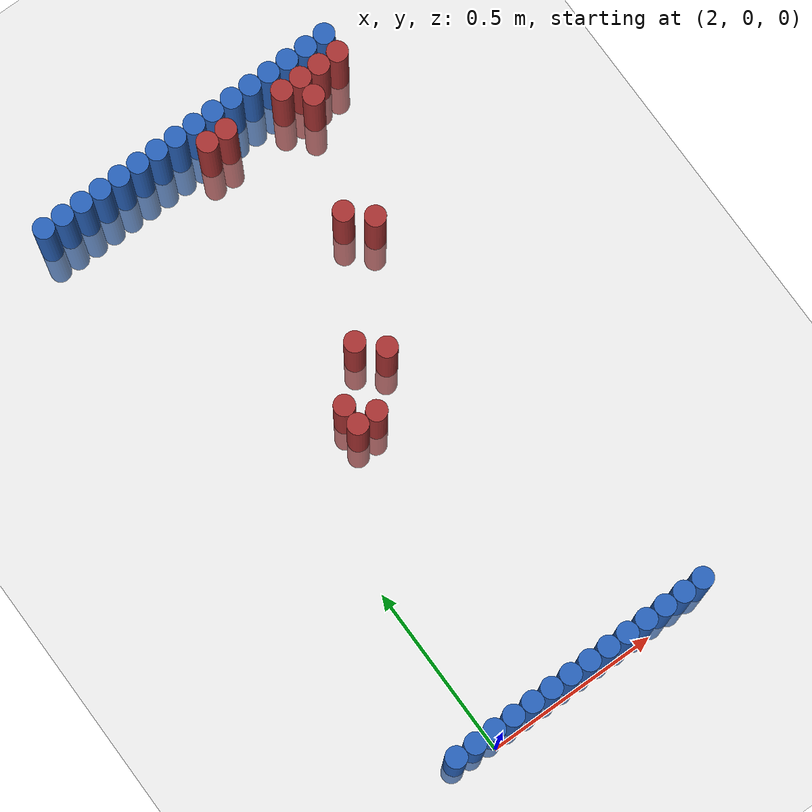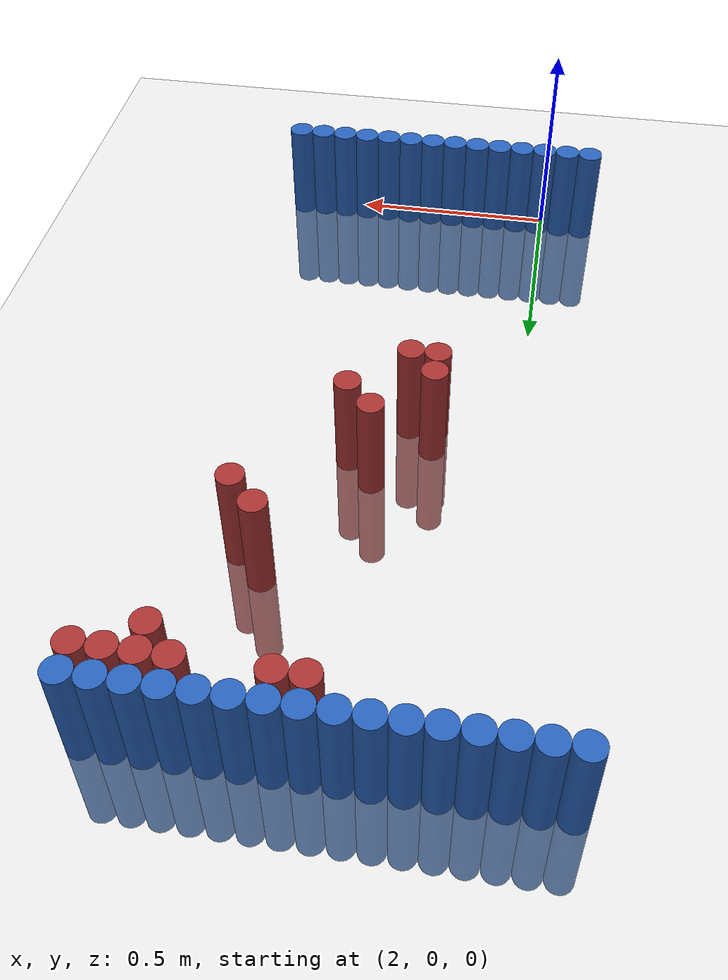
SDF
<sdf version="1.6">
 <world name="default">
  <model name="ground_plane">
   <static>1</static>
   <link name="link">
    <collision name="collision">
     <geometry><plane><normal>0 0 1</normal><size>100 100</size></plane></geometry>
     <surface><friction><ode><mu>100</mu><mu2>50</mu2></ode></friction></surface>
    </collision>
    <visual name="visual">
     <cast_shadows>0</cast_shadows>
     <geometry><plane><normal>0 0 1</normal><size>100 100</size></plane></geometry>
     <material>
      <script><uri>file://media/materials/scripts/gazebo.material</uri><name>Gazebo/Grey</name></script>
     </material>
    </visual>
   </link>
  </model>
  <model name="unit_cylinder_88">
   <static>1</static>
   <pose>1.830000 1.770000 0.000000 0.000000 0.000000 0.000000</pose>
   <link name="link">
    <inertial>
     <mass>1</mass>
     <inertia><ixx>0.145833</ixx><ixy>0</ixy><ixz>0</ixz><iyy>0.145833</iyy><iyz>0</iyz><izz>0.125</izz></inertia>
    </inertial>
    <collision name="collision">
     <geometry><cylinder><radius>0.030000</radius><length>0.5</length></cylinder></geometry>
    </collision>
    <visual name="visual">
     <geometry><cylinder><radius>0.030000</radius><length>0.5</length></cylinder></geometry>
     <material>
      <ambient>0.152000 0.379000 0.720000 1</ambient>
      <diffuse>0.152000 0.379000 0.720000 1</diffuse>
     </material>
     <material>
      <script><name>Gazebo/Grey</name><uri>file://media/materials/scripts/gazebo.material</uri></script>
     </material>
    </visual>
   </link>
  </model>
  <model name="unit_cylinder_89">
   <static>1</static>
   <pose>1.890000 0.030000 0.000000 0.000000 0.000000 0.000000</pose>
   <link name="link">
    <inertial>
     <mass>1</mass>
     <inertia><ixx>0.145833</ixx><ixy>0</ixy><ixz>0</ixz><iyy>0.145833</iyy><iyz>0</iyz><izz>0.125</izz></inertia>
    </inertial>
    <collision name="collision">
     <geometry><cylinder><radius>0.030000</radius><length>0.5</length></cylinder></geometry>
    </collision>
    <visual name="visual">
     <geometry><cylinder><radius>0.030000</radius><length>0.5</length></cylinder></geometry>
     <material>
      <ambient>0.152000 0.379000 0.720000 1</ambient>
      <diffuse>0.152000 0.379000 0.720000 1</diffuse>
     </material>
     <material>
      <script><name>Gazebo/Grey</name><uri>file://media/materials/scripts/gazebo.material</uri></script>
     </material>
    </visual>
   </link>
  </model>
  <model name="unit_cylinder_90">
   <static>1</static>
   <pose>1.890000 1.770000 0.000000 0.000000 0.000000 0.000000</pose>
   <link name="link">
    <inertial>
     <mass>1</mass>
     <inertia><ixx>0.145833</ixx><ixy>0</ixy><ixz>0</ixz><iyy>0.145833</iyy><iyz>0</iyz><izz>0.125</izz></inertia>
    </inertial>
    <collision name="collision">
     <geometry><cylinder><radius>0.030000</radius><length>0.5</length></cylinder></geometry>
    </collision>
    <visual name="visual">
     <geometry><cylinder><radius>0.030000</radius><length>0.5</length></cylinder></geometry>
     <material>
      <ambient>0.152000 0.379000 0.720000 1</ambient>
      <diffuse>0.152000 0.379000 0.720000 1</diffuse>
     </material>
     <material>
      <script><name>Gazebo/Grey</name><uri>file://media/materials/scripts/gazebo.material</uri></script>
     </material>
    </visual>
   </link>
  </model>
  <model name="unit_cylinder_91">
   <static>1</static>
   <pose>1.950000 0.030000 0.000000 0.000000 0.000000 0.000000</pose>
   <link name="link">
    <inertial>
     <mass>1</mass>
     <inertia><ixx>0.145833</ixx><ixy>0</ixy><ixz>0</ixz><iyy>0.145833</iyy><iyz>0</iyz><izz>0.125</izz></inertia>
    </inertial>
    <collision name="collision">
     <geometry><cylinder><radius>0.030000</radius><length>0.5</length></cylinder></geometry>
    </collision>
    <visual name="visual">
     <geometry><cylinder><radius>0.030000</radius><length>0.5</length></cylinder></geometry>
     <material>
      <ambient>0.152000 0.379000 0.720000 1</ambient>
      <diffuse>0.152000 0.379000 0.720000 1</diffuse>
     </material>
     <material>
      <script><name>Gazebo/Grey</name><uri>file://media/materials/scripts/gazebo.material</uri></script>
     </material>
    </visual>
   </link>
  </model>
  <model name="unit_cylinder_92">
   <static>1</static>
   <pose>1.950000 1.770000 0.000000 0.000000 0.000000 0.000000</pose>
   <link name="link">
    <inertial>
     <mass>1</mass>
     <inertia><ixx>0.145833</ixx><ixy>0</ixy><ixz>0</ixz><iyy>0.145833</iyy><iyz>0</iyz><izz>0.125</izz></inertia>
    </inertial>
    <collision name="collision">
     <geometry><cylinder><radius>0.030000</radius><length>0.5</length></cylinder></geometry>
    </collision>
    <visual name="visual">
     <geometry><cylinder><radius>0.030000</radius><length>0.5</length></cylinder></geometry>
     <material>
      <ambient>0.152000 0.379000 0.720000 1</ambient>
      <diffuse>0.152000 0.379000 0.720000 1</diffuse>
     </material>
     <material>
      <script><name>Gazebo/Grey</name><uri>file://media/materials/scripts/gazebo.material</uri></script>
     </material>
    </visual>
   </link>
  </model>
  <model name="unit_cylinder_93">
   <static>1</static>
   <pose>2.010000 0.030000 0.000000 0.000000 0.000000 0.000000</pose>
   <link name="link">
    <inertial>
     <mass>1</mass>
     <inertia><ixx>0.145833</ixx><ixy>0</ixy><ixz>0</ixz><iyy>0.145833</iyy><iyz>0</iyz><izz>0.125</izz></inertia>
    </inertial>
    <collision name="collision">
     <geometry><cylinder><radius>0.030000</radius><length>0.5</length></cylinder></geometry>
    </collision>
    <visual name="visual">
     <geometry><cylinder><radius>0.030000</radius><length>0.5</length></cylinder></geometry>
     <material>
      <ambient>0.152000 0.379000 0.720000 1</ambient>
      <diffuse>0.152000 0.379000 0.720000 1</diffuse>
     </material>
     <material>
      <script><name>Gazebo/Grey</name><uri>file://media/materials/scripts/gazebo.material</uri></script>
     </material>
    </visual>
   </link>
  </model>
  <model name="unit_cylinder_94">
   <static>1</static>
   <pose>2.010000 1.770000 0.000000 0.000000 0.000000 0.000000</pose>
   <link name="link">
    <inertial>
     <mass>1</mass>
     <inertia><ixx>0.145833</ixx><ixy>0</ixy><ixz>0</ixz><iyy>0.145833</iyy><iyz>0</iyz><izz>0.125</izz></inertia>
    </inertial>
    <collision name="collision">
     <geometry><cylinder><radius>0.030000</radius><length>0.5</length></cylinder></geometry>
    </collision>
    <visual name="visual">
     <geometry><cylinder><radius>0.030000</radius><length>0.5</length></cylinder></geometry>
     <material>
      <ambient>0.152000 0.379000 0.720000 1</ambient>
      <diffuse>0.152000 0.379000 0.720000 1</diffuse>
     </material>
     <material>
      <script><name>Gazebo/Grey</name><uri>file://media/materials/scripts/gazebo.material</uri></script>
     </material>
    </visual>
   </link>
  </model>
  <model name="unit_cylinder_95">
   <static>1</static>
   <pose>2.070000 1.770000 0.000000 0.000000 0.000000 0.000000</pose>
   <link name="link">
    <inertial>
     <mass>1</mass>
     <inertia><ixx>0.145833</ixx><ixy>0</ixy><ixz>0</ixz><iyy>0.145833</iyy><iyz>0</iyz><izz>0.125</izz></inertia>
    </inertial>
    <collision name="collision">
     <geometry><cylinder><radius>0.030000</radius><length>0.5</length></cylinder></geometry>
    </collision>
    <visual name="visual">
     <geometry><cylinder><radius>0.030000</radius><length>0.5</length></cylinder></geometry>
     <material>
      <ambient>0.152000 0.379000 0.720000 1</ambient>
      <diffuse>0.152000 0.379000 0.720000 1</diffuse>
     </material>
     <material>
      <script><name>Gazebo/Grey</name><uri>file://media/materials/scripts/gazebo.material</uri></script>
     </material>
    </visual>
   </link>
  </model>
  <model name="unit_cylinder_96">
   <static>1</static>
   <pose>2.130000 1.770000 0.000000 0.000000 0.000000 0.000000</pose>
   <link name="link">
    <inertial>
     <mass>1</mass>
     <inertia><ixx>0.145833</ixx><ixy>0</ixy><ixz>0</ixz><iyy>0.145833</iyy><iyz>0</iyz><izz>0.125</izz></inertia>
    </inertial>
    <collision name="collision">
     <geometry><cylinder><radius>0.030000</radius><length>0.5</length></cylinder></geometry>
    </collision>
    <visual name="visual">
     <geometry><cylinder><radius>0.030000</radius><length>0.5</length></cylinder></geometry>
     <material>
      <ambient>0.152000 0.379000 0.720000 1</ambient>
      <diffuse>0.152000 0.379000 0.720000 1</diffuse>
     </material>
     <material>
      <script><name>Gazebo/Grey</name><uri>file://media/materials/scripts/gazebo.material</uri></script>
     </material>
    </visual>
   </link>
  </model>
  <model name="unit_cylinder_97">
   <static>1</static>
   <pose>2.190000 1.770000 0.000000 0.000000 0.000000 0.000000</pose>
   <link name="link">
    <inertial>
     <mass>1</mass>
     <inertia><ixx>0.145833</ixx><ixy>0</ixy><ixz>0</ixz><iyy>0.145833</iyy><iyz>0</iyz><izz>0.125</izz></inertia>
    </inertial>
    <collision name="collision">
     <geometry><cylinder><radius>0.030000</radius><length>0.5</length></cylinder></geometry>
    </collision>
    <visual name="visual">
     <geometry><cylinder><radius>0.030000</radius><length>0.5</length></cylinder></geometry>
     <material>
      <ambient>0.152000 0.379000 0.720000 1</ambient>
      <diffuse>0.152000 0.379000 0.720000 1</diffuse>
     </material>
     <material>
      <script><name>Gazebo/Grey</name><uri>file://media/materials/scripts/gazebo.material</uri></script>
     </material>
    </visual>
   </link>
  </model>
  <model name="unit_cylinder_98">
   <static>1</static>
   <pose>2.250000 1.770000 0.000000 0.000000 0.000000 0.000000</pose>
   <link name="link">
    <inertial>
     <mass>1</mass>
     <inertia><ixx>0.145833</ixx><ixy>0</ixy><ixz>0</ixz><iyy>0.145833</iyy><iyz>0</iyz><izz>0.125</izz></inertia>
    </inertial>
    <collision name="collision">
     <geometry><cylinder><radius>0.030000</radius><length>0.5</length></cylinder></geometry>
    </collision>
    <visual name="visual">
     <geometry><cylinder><radius>0.030000</radius><length>0.5</length></cylinder></geometry>
     <material>
      <ambient>0.152000 0.379000 0.720000 1</ambient>
      <diffuse>0.152000 0.379000 0.720000 1</diffuse>
     </material>
     <material>
      <script><name>Gazebo/Grey</name><uri>file://media/materials/scripts/gazebo.material</uri></script>
     </material>
    </visual>
   </link>
  </model>
  <model name="unit_cylinder_99">
   <static>1</static>
   <pose>2.310000 1.770000 0.000000 0.000000 0.000000 0.000000</pose>
   <link name="link">
    <inertial>
     <mass>1</mass>
     <inertia><ixx>0.145833</ixx><ixy>0</ixy><ixz>0</ixz><iyy>0.145833</iyy><iyz>0</iyz><izz>0.125</izz></inertia>
    </inertial>
    <collision name="collision">
     <geometry><cylinder><radius>0.030000</radius><length>0.5</length></cylinder></geometry>
    </collision>
    <visual name="visual">
     <geometry><cylinder><radius>0.030000</radius><length>0.5</length></cylinder></geometry>
     <material>
      <ambient>0.152000 0.379000 0.720000 1</ambient>
      <diffuse>0.152000 0.379000 0.720000 1</diffuse>
     </material>
     <material>
      <script><name>Gazebo/Grey</name><uri>file://media/materials/scripts/gazebo.material</uri></script>
     </material>
    </visual>
   </link>
  </model>
  <model name="unit_cylinder_100">
   <static>1</static>
   <pose>2.370000 1.770000 0.000000 0.000000 0.000000 0.000000</pose>
   <link name="link">
    <inertial>
     <mass>1</mass>
     <inertia><ixx>0.145833</ixx><ixy>0</ixy><ixz>0</ixz><iyy>0.145833</iyy><iyz>0</iyz><izz>0.125</izz></inertia>
    </inertial>
    <collision name="collision">
     <geometry><cylinder><radius>0.030000</radius><length>0.5</length></cylinder></geometry>
    </collision>
    <visual name="visual">
     <geometry><cylinder><radius>0.030000</radius><length>0.5</length></cylinder></geometry>
     <material>
      <ambient>0.152000 0.379000 0.720000 1</ambient>
      <diffuse>0.152000 0.379000 0.720000 1</diffuse>
     </material>
     <material>
      <script><name>Gazebo/Grey</name><uri>file://media/materials/scripts/gazebo.material</uri></script>
     </material>
    </visual>
   </link>
  </model>
  <model name="unit_cylinder_101">
   <static>1</static>
   <pose>2.430000 1.770000 0.000000 0.000000 0.000000 0.000000</pose>
   <link name="link">
    <inertial>
     <mass>1</mass>
     <inertia><ixx>0.145833</ixx><ixy>0</ixy><ixz>0</ixz><iyy>0.145833</iyy><iyz>0</iyz><izz>0.125</izz></inertia>
    </inertial>
    <collision name="collision">
     <geometry><cylinder><radius>0.030000</radius><length>0.5</length></cylinder></geometry>
    </collision>
    <visual name="visual">
     <geometry><cylinder><radius>0.030000</radius><length>0.5</length></cylinder></geometry>
     <material>
      <ambient>0.152000 0.379000 0.720000 1</ambient>
      <diffuse>0.152000 0.379000 0.720000 1</diffuse>
     </material>
     <material>
      <script><name>Gazebo/Grey</name><uri>file://media/materials/scripts/gazebo.material</uri></script>
     </material>
    </visual>
   </link>
  </model>
  <model name="unit_cylinder_102">
   <static>1</static>
   <pose>2.490000 1.770000 0.000000 0.000000 0.000000 0.000000</pose>
   <link name="link">
    <inertial>
     <mass>1</mass>
     <inertia><ixx>0.145833</ixx><ixy>0</ixy><ixz>0</ixz><iyy>0.145833</iyy><iyz>0</iyz><izz>0.125</izz></inertia>
    </inertial>
    <collision name="collision">
     <geometry><cylinder><radius>0.030000</radius><length>0.5</length></cylinder></geometry>
    </collision>
    <visual name="visual">
     <geometry><cylinder><radius>0.030000</radius><length>0.5</length></cylinder></geometry>
     <material>
      <ambient>0.152000 0.379000 0.720000 1</ambient>
      <diffuse>0.152000 0.379000 0.720000 1</diffuse>
     </material>
     <material>
      <script><name>Gazebo/Grey</name><uri>file://media/materials/scripts/gazebo.material</uri></script>
     </material>
    </visual>
   </link>
  </model>
  <model name="unit_cylinder_103">
   <static>1</static>
   <pose>2.550000 1.770000 0.000000 0.000000 0.000000 0.000000</pose>
   <link name="link">
    <inertial>
     <mass>1</mass>
     <inertia><ixx>0.145833</ixx><ixy>0</ixy><ixz>0</ixz><iyy>0.145833</iyy><iyz>0</iyz><izz>0.125</izz></inertia>
    </inertial>
    <collision name="collision">
     <geometry><cylinder><radius>0.030000</radius><length>0.5</length></cylinder></geometry>
    </collision>
    <visual name="visual">
     <geometry><cylinder><radius>0.030000</radius><length>0.5</length></cylinder></geometry>
     <material>
      <ambient>0.152000 0.379000 0.720000 1</ambient>
      <diffuse>0.152000 0.379000 0.720000 1</diffuse>
     </material>
     <material>
      <script><name>Gazebo/Grey</name><uri>file://media/materials/scripts/gazebo.material</uri></script>
     </material>
    </visual>
   </link>
  </model>
  <model name="unit_cylinder_104">
   <static>1</static>
   <pose>2.610000 1.770000 0.000000 0.000000 0.000000 0.000000</pose>
   <link name="link">
    <inertial>
     <mass>1</mass>
     <inertia><ixx>0.145833</ixx><ixy>0</ixy><ixz>0</ixz><iyy>0.145833</iyy><iyz>0</iyz><izz>0.125</izz></inertia>
    </inertial>
    <collision name="collision">
     <geometry><cylinder><radius>0.030000</radius><length>0.5</length></cylinder></geometry>
    </collision>
    <visual name="visual">
     <geometry><cylinder><radius>0.030000</radius><length>0.5</length></cylinder></geometry>
     <material>
      <ambient>0.152000 0.379000 0.720000 1</ambient>
      <diffuse>0.152000 0.379000 0.720000 1</diffuse>
     </material>
     <material>
      <script><name>Gazebo/Grey</name><uri>file://media/materials/scripts/gazebo.material</uri></script>
     </material>
    </visual>
   </link>
  </model>
  <model name="unit_cylinder_105">
   <static>1</static>
   <pose>2.670000 1.770000 0.000000 0.000000 0.000000 0.000000</pose>
   <link name="link">
    <inertial>
     <mass>1</mass>
     <inertia><ixx>0.145833</ixx><ixy>0</ixy><ixz>0</ixz><iyy>0.145833</iyy><iyz>0</iyz><izz>0.125</izz></inertia>
    </inertial>
    <collision name="collision">
     <geometry><cylinder><radius>0.030000</radius><length>0.5</length></cylinder></geometry>
    </collision>
    <visual name="visual">
     <geometry><cylinder><radius>0.030000</radius><length>0.5</length></cylinder></geometry>
     <material>
      <ambient>0.152000 0.379000 0.720000 1</ambient>
      <diffuse>0.152000 0.379000 0.720000 1</diffuse>
     </material>
     <material>
      <script><name>Gazebo/Grey</name><uri>file://media/materials/scripts/gazebo.material</uri></script>
     </material>
    </visual>
   </link>
  </model>
  <model name="unit_cylinder_106">
   <static>1</static>
   <pose>2.730000 1.770000 0.000000 0.000000 0.000000 0.000000</pose>
   <link name="link">
    <inertial>
     <mass>1</mass>
     <inertia><ixx>0.145833</ixx><ixy>0</ixy><ixz>0</ixz><iyy>0.145833</iyy><iyz>0</iyz><izz>0.125</izz></inertia>
    </inertial>
    <collision name="collision">
     <geometry><cylinder><radius>0.030000</radius><length>0.5</length></cylinder></geometry>
    </collision>
    <visual name="visual">
     <geometry><cylinder><radius>0.030000</radius><length>0.5</length></cylinder></geometry>
     <material>
      <ambient>0.152000 0.379000 0.720000 1</ambient>
      <diffuse>0.152000 0.379000 0.720000 1</diffuse>
     </material>
     <material>
      <script><name>Gazebo/Grey</name><uri>file://media/materials/scripts/gazebo.material</uri></script>
     </material>
    </visual>
   </link>
  </model>
  <model name="unit_cylinder_125">
   <static>1</static>
   <pose>2.310000 1.710000 0.000000 0.000000 0.000000 0.000000</pose>
   <link name="link">
    <inertial>
     <mass>1</mass>
     <inertia><ixx>0.145833</ixx><ixy>0</ixy><ixz>0</ixz><iyy>0.145833</iyy><iyz>0</iyz><izz>0.125</izz></inertia>
    </inertial>
    <collision name="collision">
     <geometry><cylinder><radius>0.030000</radius><length>0.5</length></cylinder></geometry>
    </collision>
    <visual name="visual">
     <geometry><cylinder><radius>0.030000</radius><length>0.5</length></cylinder></geometry>
     <material>
      <ambient>0.648000 0.192000 0.192000 1</ambient>
      <diffuse>0.648000 0.192000 0.192000 1</diffuse>
     </material>
     <material>
      <script><name>Gazebo/Grey</name><uri>file://media/materials/scripts/gazebo.material</uri></script>
     </material>
    </visual>
   </link>
  </model>
  <model name="unit_cylinder_126">
   <static>1</static>
   <pose>2.370000 1.710000 0.000000 0.000000 0.000000 0.000000</pose>
   <link name="link">
    <inertial>
     <mass>1</mass>
     <inertia><ixx>0.145833</ixx><ixy>0</ixy><ixz>0</ixz><iyy>0.145833</iyy><iyz>0</iyz><izz>0.125</izz></inertia>
    </inertial>
    <collision name="collision">
     <geometry><cylinder><radius>0.030000</radius><length>0.5</length></cylinder></geometry>
    </collision>
    <visual name="visual">
     <geometry><cylinder><radius>0.030000</radius><length>0.5</length></cylinder></geometry>
     <material>
      <ambient>0.648000 0.192000 0.192000 1</ambient>
      <diffuse>0.648000 0.192000 0.192000 1</diffuse>
     </material>
     <material>
      <script><name>Gazebo/Grey</name><uri>file://media/materials/scripts/gazebo.material</uri></script>
     </material>
    </visual>
   </link>
  </model>
  <model name="unit_cylinder_127">
   <static>1</static>
   <pose>2.550000 1.710000 0.000000 0.000000 0.000000 0.000000</pose>
   <link name="link">
    <inertial>
     <mass>1</mass>
     <inertia><ixx>0.145833</ixx><ixy>0</ixy><ixz>0</ixz><iyy>0.145833</iyy><iyz>0</iyz><izz>0.125</izz></inertia>
    </inertial>
    <collision name="collision">
     <geometry><cylinder><radius>0.030000</radius><length>0.5</length></cylinder></geometry>
    </collision>
    <visual name="visual">
     <geometry><cylinder><radius>0.030000</radius><length>0.5</length></cylinder></geometry>
     <material>
      <ambient>0.648000 0.192000 0.192000 1</ambient>
      <diffuse>0.648000 0.192000 0.192000 1</diffuse>
     </material>
     <material>
      <script><name>Gazebo/Grey</name><uri>file://media/materials/scripts/gazebo.material</uri></script>
     </material>
    </visual>
   </link>
  </model>
  <model name="unit_cylinder_128">
   <static>1</static>
   <pose>2.610000 1.710000 0.000000 0.000000 0.000000 0.000000</pose>
   <link name="link">
    <inertial>
     <mass>1</mass>
     <inertia><ixx>0.145833</ixx><ixy>0</ixy><ixz>0</ixz><iyy>0.145833</iyy><iyz>0</iyz><izz>0.125</izz></inertia>
    </inertial>
    <collision name="collision">
     <geometry><cylinder><radius>0.030000</radius><length>0.5</length></cylinder></geometry>
    </collision>
    <visual name="visual">
     <geometry><cylinder><radius>0.030000</radius><length>0.5</length></cylinder></geometry>
     <material>
      <ambient>0.648000 0.192000 0.192000 1</ambient>
      <diffuse>0.648000 0.192000 0.192000 1</diffuse>
     </material>
     <material>
      <script><name>Gazebo/Grey</name><uri>file://media/materials/scripts/gazebo.material</uri></script>
     </material>
    </visual>
   </link>
  </model>
  <model name="unit_cylinder_129">
   <static>1</static>
   <pose>2.670000 1.710000 0.000000 0.000000 0.000000 0.000000</pose>
   <link name="link">
    <inertial>
     <mass>1</mass>
     <inertia><ixx>0.145833</ixx><ixy>0</ixy><ixz>0</ixz><iyy>0.145833</iyy><iyz>0</iyz><izz>0.125</izz></inertia>
    </inertial>
    <collision name="collision">
     <geometry><cylinder><radius>0.030000</radius><length>0.5</length></cylinder></geometry>
    </collision>
    <visual name="visual">
     <geometry><cylinder><radius>0.030000</radius><length>0.5</length></cylinder></geometry>
     <material>
      <ambient>0.648000 0.192000 0.192000 1</ambient>
      <diffuse>0.648000 0.192000 0.192000 1</diffuse>
     </material>
     <material>
      <script><name>Gazebo/Grey</name><uri>file://media/materials/scripts/gazebo.material</uri></script>
     </material>
    </visual>
   </link>
  </model>
  <model name="unit_cylinder_130">
   <static>1</static>
   <pose>2.730000 1.710000 0.000000 0.000000 0.000000 0.000000</pose>
   <link name="link">
    <inertial>
     <mass>1</mass>
     <inertia><ixx>0.145833</ixx><ixy>0</ixy><ixz>0</ixz><iyy>0.145833</iyy><iyz>0</iyz><izz>0.125</izz></inertia>
    </inertial>
    <collision name="collision">
     <geometry><cylinder><radius>0.030000</radius><length>0.5</length></cylinder></geometry>
    </collision>
    <visual name="visual">
     <geometry><cylinder><radius>0.030000</radius><length>0.5</length></cylinder></geometry>
     <material>
      <ambient>0.648000 0.192000 0.192000 1</ambient>
      <diffuse>0.648000 0.192000 0.192000 1</diffuse>
     </material>
     <material>
      <script><name>Gazebo/Grey</name><uri>file://media/materials/scripts/gazebo.material</uri></script>
     </material>
    </visual>
   </link>
  </model>
  <model name="unit_cylinder_143">
   <static>1</static>
   <pose>2.610000 1.650000 0.000000 0.000000 0.000000 0.000000</pose>
   <link name="link">
    <inertial>
     <mass>1</mass>
     <inertia><ixx>0.145833</ixx><ixy>0</ixy><ixz>0</ixz><iyy>0.145833</iyy><iyz>0</iyz><izz>0.125</izz></inertia>
    </inertial>
    <collision name="collision">
     <geometry><cylinder><radius>0.030000</radius><length>0.5</length></cylinder></geometry>
    </collision>
    <visual name="visual">
     <geometry><cylinder><radius>0.030000</radius><length>0.5</length></cylinder></geometry>
     <material>
      <ambient>0.648000 0.192000 0.192000 1</ambient>
      <diffuse>0.648000 0.192000 0.192000 1</diffuse>
     </material>
     <material>
      <script><name>Gazebo/Grey</name><uri>file://media/materials/scripts/gazebo.material</uri></script>
     </material>
    </visual>
   </link>
  </model>
  <model name="unit_cylinder_146">
   <static>1</static>
   <pose>2.490000 1.350000 0.000000 0.000000 0.000000 0.000000</pose>
   <link name="link">
    <inertial>
     <mass>1</mass>
     <inertia><ixx>0.145833</ixx><ixy>0</ixy><ixz>0</ixz><iyy>0.145833</iyy><iyz>0</iyz><izz>0.125</izz></inertia>
    </inertial>
    <collision name="collision">
     <geometry><cylinder><radius>0.030000</radius><length>0.5</length></cylinder></geometry>
    </collision>
    <visual name="visual">
     <geometry><cylinder><radius>0.030000</radius><length>0.5</length></cylinder></geometry>
     <material>
      <ambient>0.648000 0.192000 0.192000 1</ambient>
      <diffuse>0.648000 0.192000 0.192000 1</diffuse>
     </material>
     <material>
      <script><name>Gazebo/Grey</name><uri>file://media/materials/scripts/gazebo.material</uri></script>
     </material>
    </visual>
   </link>
  </model>
  <model name="unit_cylinder_147">
   <static>1</static>
   <pose>2.550000 1.290000 0.000000 0.000000 0.000000 0.000000</pose>
   <link name="link">
    <inertial>
     <mass>1</mass>
     <inertia><ixx>0.145833</ixx><ixy>0</ixy><ixz>0</ixz><iyy>0.145833</iyy><iyz>0</iyz><izz>0.125</izz></inertia>
    </inertial>
    <collision name="collision">
     <geometry><cylinder><radius>0.030000</radius><length>0.5</length></cylinder></geometry>
    </collision>
    <visual name="visual">
     <geometry><cylinder><radius>0.030000</radius><length>0.5</length></cylinder></geometry>
     <material>
      <ambient>0.648000 0.192000 0.192000 1</ambient>
      <diffuse>0.648000 0.192000 0.192000 1</diffuse>
     </material>
     <material>
      <script><name>Gazebo/Grey</name><uri>file://media/materials/scripts/gazebo.material</uri></script>
     </material>
    </visual>
   </link>
  </model>
  <model name="unit_cylinder_160">
   <static>1</static>
   <pose>2.310000 1.050000 0.000000 0.000000 0.000000 0.000000</pose>
   <link name="link">
    <inertial>
     <mass>1</mass>
     <inertia><ixx>0.145833</ixx><ixy>0</ixy><ixz>0</ixz><iyy>0.145833</iyy><iyz>0</iyz><izz>0.125</izz></inertia>
    </inertial>
    <collision name="collision">
     <geometry><cylinder><radius>0.030000</radius><length>0.5</length></cylinder></geometry>
    </collision>
    <visual name="visual">
     <geometry><cylinder><radius>0.030000</radius><length>0.5</length></cylinder></geometry>
     <material>
      <ambient>0.648000 0.192000 0.192000 1</ambient>
      <diffuse>0.648000 0.192000 0.192000 1</diffuse>
     </material>
     <material>
      <script><name>Gazebo/Grey</name><uri>file://media/materials/scripts/gazebo.material</uri></script>
     </material>
    </visual>
   </link>
  </model>
  <model name="unit_cylinder_161">
   <static>1</static>
   <pose>2.370000 0.990000 0.000000 0.000000 0.000000 0.000000</pose>
   <link name="link">
    <inertial>
     <mass>1</mass>
     <inertia><ixx>0.145833</ixx><ixy>0</ixy><ixz>0</ixz><iyy>0.145833</iyy><iyz>0</iyz><izz>0.125</izz></inertia>
    </inertial>
    <collision name="collision">
     <geometry><cylinder><radius>0.030000</radius><length>0.5</length></cylinder></geometry>
    </collision>
    <visual name="visual">
     <geometry><cylinder><radius>0.030000</radius><length>0.5</length></cylinder></geometry>
     <material>
      <ambient>0.648000 0.192000 0.192000 1</ambient>
      <diffuse>0.648000 0.192000 0.192000 1</diffuse>
     </material>
     <material>
      <script><name>Gazebo/Grey</name><uri>file://media/materials/scripts/gazebo.material</uri></script>
     </material>
    </visual>
   </link>
  </model>
  <model name="unit_cylinder_162">
   <static>1</static>
   <pose>2.190000 0.930000 0.000000 0.000000 0.000000 0.000000</pose>
   <link name="link">
    <inertial>
     <mass>1</mass>
     <inertia><ixx>0.145833</ixx><ixy>0</ixy><ixz>0</ixz><iyy>0.145833</iyy><iyz>0</iyz><izz>0.125</izz></inertia>
    </inertial>
    <collision name="collision">
     <geometry><cylinder><radius>0.030000</radius><length>0.5</length></cylinder></geometry>
    </collision>
    <visual name="visual">
     <geometry><cylinder><radius>0.030000</radius><length>0.5</length></cylinder></geometry>
     <material>
      <ambient>0.648000 0.192000 0.192000 1</ambient>
      <diffuse>0.648000 0.192000 0.192000 1</diffuse>
     </material>
     <material>
      <script><name>Gazebo/Grey</name><uri>file://media/materials/scripts/gazebo.material</uri></script>
     </material>
    </visual>
   </link>
  </model>
  <model name="unit_cylinder_164">
   <static>1</static>
   <pose>2.190000 0.870000 0.000000 0.000000 0.000000 0.000000</pose>
   <link name="link">
    <inertial>
     <mass>1</mass>
     <inertia><ixx>0.145833</ixx><ixy>0</ixy><ixz>0</ixz><iyy>0.145833</iyy><iyz>0</iyz><izz>0.125</izz></inertia>
    </inertial>
    <collision name="collision">
     <geometry><cylinder><radius>0.030000</radius><length>0.5</length></cylinder></geometry>
    </collision>
    <visual name="visual">
     <geometry><cylinder><radius>0.030000</radius><length>0.5</length></cylinder></geometry>
     <material>
      <ambient>0.648000 0.192000 0.192000 1</ambient>
      <diffuse>0.648000 0.192000 0.192000 1</diffuse>
     </material>
     <material>
      <script><name>Gazebo/Grey</name><uri>file://media/materials/scripts/gazebo.material</uri></script>
     </material>
    </visual>
   </link>
  </model>
  <model name="unit_cylinder_165">
   <static>1</static>
   <pose>2.250000 0.870000 0.000000 0.000000 0.000000 0.000000</pose>
   <link name="link">
    <inertial>
     <mass>1</mass>
     <inertia><ixx>0.145833</ixx><ixy>0</ixy><ixz>0</ixz><iyy>0.145833</iyy><iyz>0</iyz><izz>0.125</izz></inertia>
    </inertial>
    <collision name="collision">
     <geometry><cylinder><radius>0.030000</radius><length>0.5</length></cylinder></geometry>
    </collision>
    <visual name="visual">
     <geometry><cylinder><radius>0.030000</radius><length>0.5</length></cylinder></geometry>
     <material>
      <ambient>0.648000 0.192000 0.192000 1</ambient>
      <diffuse>0.648000 0.192000 0.192000 1</diffuse>
     </material>
     <material>
      <script><name>Gazebo/Grey</name><uri>file://media/materials/scripts/gazebo.material</uri></script>
     </material>
    </visual>
   </link>
  </model>
  <model name="unit_cylinder_191">
   <static>1</static>
   <pose>2.070000 0.030000 0.000000 0.000000 0.000000 0.000000</pose>
   <link name="link">
    <inertial>
     <mass>1</mass>
     <inertia><ixx>0.145833</ixx><ixy>0</ixy><ixz>0</ixz><iyy>0.145833</iyy><iyz>0</iyz><izz>0.125</izz></inertia>
    </inertial>
    <collision name="collision">
     <geometry><cylinder><radius>0.030000</radius><length>0.5</length></cylinder></geometry>
    </collision>
    <visual name="visual">
     <geometry><cylinder><radius>0.030000</radius><length>0.5</length></cylinder></geometry>
     <material>
      <ambient>0.152000 0.379000 0.720000 1</ambient>
      <diffuse>0.152000 0.379000 0.720000 1</diffuse>
     </material>
     <material>
      <script><name>Gazebo/Grey</name><uri>file://media/materials/scripts/gazebo.material</uri></script>
     </material>
    </visual>
   </link>
  </model>
  <model name="unit_cylinder_192">
   <static>1</static>
   <pose>2.130000 0.030000 0.000000 0.000000 0.000000 0.000000</pose>
   <link name="link">
    <inertial>
     <mass>1</mass>
     <inertia><ixx>0.145833</ixx><ixy>0</ixy><ixz>0</ixz><iyy>0.145833</iyy><iyz>0</iyz><izz>0.125</izz></inertia>
    </inertial>
    <collision name="collision">
     <geometry><cylinder><radius>0.030000</radius><length>0.5</length></cylinder></geometry>
    </collision>
    <visual name="visual">
     <geometry><cylinder><radius>0.030000</radius><length>0.5</length></cylinder></geometry>
     <material>
      <ambient>0.152000 0.379000 0.720000 1</ambient>
      <diffuse>0.152000 0.379000 0.720000 1</diffuse>
     </material>
     <material>
      <script><name>Gazebo/Grey</name><uri>file://media/materials/scripts/gazebo.material</uri></script>
     </material>
    </visual>
   </link>
  </model>
  <model name="unit_cylinder_193">
   <static>1</static>
   <pose>2.190000 0.030000 0.000000 0.000000 0.000000 0.000000</pose>
   <link name="link">
    <inertial>
     <mass>1</mass>
     <inertia><ixx>0.145833</ixx><ixy>0</ixy><ixz>0</ixz><iyy>0.145833</iyy><iyz>0</iyz><izz>0.125</izz></inertia>
    </inertial>
    <collision name="collision">
     <geometry><cylinder><radius>0.030000</radius><length>0.5</length></cylinder></geometry>
    </collision>
    <visual name="visual">
     <geometry><cylinder><radius>0.030000</radius><length>0.5</length></cylinder></geometry>
     <material>
      <ambient>0.152000 0.379000 0.720000 1</ambient>
      <diffuse>0.152000 0.379000 0.720000 1</diffuse>
     </material>
     <material>
      <script><name>Gazebo/Grey</name><uri>file://media/materials/scripts/gazebo.material</uri></script>
     </material>
    </visual>
   </link>
  </model>
  <model name="unit_cylinder_194">
   <static>1</static>
   <pose>2.250000 0.030000 0.000000 0.000000 0.000000 0.000000</pose>
   <link name="link">
    <inertial>
     <mass>1</mass>
     <inertia><ixx>0.145833</ixx><ixy>0</ixy><ixz>0</ixz><iyy>0.145833</iyy><iyz>0</iyz><izz>0.125</izz></inertia>
    </inertial>
    <collision name="collision">
     <geometry><cylinder><radius>0.030000</radius><length>0.5</length></cylinder></geometry>
    </collision>
    <visual name="visual">
     <geometry><cylinder><radius>0.030000</radius><length>0.5</length></cylinder></geometry>
     <material>
      <ambient>0.152000 0.379000 0.720000 1</ambient>
      <diffuse>0.152000 0.379000 0.720000 1</diffuse>
     </material>
     <material>
      <script><name>Gazebo/Grey</name><uri>file://media/materials/scripts/gazebo.material</uri></script>
     </material>
    </visual>
   </link>
  </model>
  <model name="unit_cylinder_195">
   <static>1</static>
   <pose>2.310000 0.030000 0.000000 0.000000 0.000000 0.000000</pose>
   <link name="link">
    <inertial>
     <mass>1</mass>
     <inertia><ixx>0.145833</ixx><ixy>0</ixy><ixz>0</ixz><iyy>0.145833</iyy><iyz>0</iyz><izz>0.125</izz></inertia>
    </inertial>
    <collision name="collision">
     <geometry><cylinder><radius>0.030000</radius><length>0.5</length></cylinder></geometry>
    </collision>
    <visual name="visual">
     <geometry><cylinder><radius>0.030000</radius><length>0.5</length></cylinder></geometry>
     <material>
      <ambient>0.152000 0.379000 0.720000 1</ambient>
      <diffuse>0.152000 0.379000 0.720000 1</diffuse>
     </material>
     <material>
      <script><name>Gazebo/Grey</name><uri>file://media/materials/scripts/gazebo.material</uri></script>
     </material>
    </visual>
   </link>
  </model>
  <model name="unit_cylinder_196">
   <static>1</static>
   <pose>2.370000 0.030000 0.000000 0.000000 0.000000 0.000000</pose>
   <link name="link">
    <inertial>
     <mass>1</mass>
     <inertia><ixx>0.145833</ixx><ixy>0</ixy><ixz>0</ixz><iyy>0.145833</iyy><iyz>0</iyz><izz>0.125</izz></inertia>
    </inertial>
    <collision name="collision">
     <geometry><cylinder><radius>0.030000</radius><length>0.5</length></cylinder></geometry>
    </collision>
    <visual name="visual">
     <geometry><cylinder><radius>0.030000</radius><length>0.5</length></cylinder></geometry>
     <material>
      <ambient>0.152000 0.379000 0.720000 1</ambient>
      <diffuse>0.152000 0.379000 0.720000 1</diffuse>
     </material>
     <material>
      <script><name>Gazebo/Grey</name><uri>file://media/materials/scripts/gazebo.material</uri></script>
     </material>
    </visual>
   </link>
  </model>
  <model name="unit_cylinder_197">
   <static>1</static>
   <pose>2.430000 0.030000 0.000000 0.000000 0.000000 0.000000</pose>
   <link name="link">
    <inertial>
     <mass>1</mass>
     <inertia><ixx>0.145833</ixx><ixy>0</ixy><ixz>0</ixz><iyy>0.145833</iyy><iyz>0</iyz><izz>0.125</izz></inertia>
    </inertial>
    <collision name="collision">
     <geometry><cylinder><radius>0.030000</radius><length>0.5</length></cylinder></geometry>
    </collision>
    <visual name="visual">
     <geometry><cylinder><radius>0.030000</radius><length>0.5</length></cylinder></geometry>
     <material>
      <ambient>0.152000 0.379000 0.720000 1</ambient>
      <diffuse>0.152000 0.379000 0.720000 1</diffuse>
     </material>
     <material>
      <script><name>Gazebo/Grey</name><uri>file://media/materials/scripts/gazebo.material</uri></script>
     </material>
    </visual>
   </link>
  </model>
  <model name="unit_cylinder_198">
   <static>1</static>
   <pose>2.490000 0.030000 0.000000 0.000000 0.000000 0.000000</pose>
   <link name="link">
    <inertial>
     <mass>1</mass>
     <inertia><ixx>0.145833</ixx><ixy>0</ixy><ixz>0</ixz><iyy>0.145833</iyy><iyz>0</iyz><izz>0.125</izz></inertia>
    </inertial>
    <collision name="collision">
     <geometry><cylinder><radius>0.030000</radius><length>0.5</length></cylinder></geometry>
    </collision>
    <visual name="visual">
     <geometry><cylinder><radius>0.030000</radius><length>0.5</length></cylinder></geometry>
     <material>
      <ambient>0.152000 0.379000 0.720000 1</ambient>
      <diffuse>0.152000 0.379000 0.720000 1</diffuse>
     </material>
     <material>
      <script><name>Gazebo/Grey</name><uri>file://media/materials/scripts/gazebo.material</uri></script>
     </material>
    </visual>
   </link>
  </model>
  <model name="unit_cylinder_199">
   <static>1</static>
   <pose>2.550000 0.030000 0.000000 0.000000 0.000000 0.000000</pose>
   <link name="link">
    <inertial>
     <mass>1</mass>
     <inertia><ixx>0.145833</ixx><ixy>0</ixy><ixz>0</ixz><iyy>0.145833</iyy><iyz>0</iyz><izz>0.125</izz></inertia>
    </inertial>
    <collision name="collision">
     <geometry><cylinder><radius>0.030000</radius><length>0.5</length></cylinder></geometry>
    </collision>
    <visual name="visual">
     <geometry><cylinder><radius>0.030000</radius><length>0.5</length></cylinder></geometry>
     <material>
      <ambient>0.152000 0.379000 0.720000 1</ambient>
      <diffuse>0.152000 0.379000 0.720000 1</diffuse>
     </material>
     <material>
      <script><name>Gazebo/Grey</name><uri>file://media/materials/scripts/gazebo.material</uri></script>
     </material>
    </visual>
   </link>
  </model>
  <model name="unit_cylinder_200">
   <static>1</static>
   <pose>2.610000 0.030000 0.000000 0.000000 0.000000 0.000000</pose>
   <link name="link">
    <inertial>
     <mass>1</mass>
     <inertia><ixx>0.145833</ixx><ixy>0</ixy><ixz>0</ixz><iyy>0.145833</iyy><iyz>0</iyz><izz>0.125</izz></inertia>
    </inertial>
    <collision name="collision">
     <geometry><cylinder><radius>0.030000</radius><length>0.5</length></cylinder></geometry>
    </collision>
    <visual name="visual">
     <geometry><cylinder><radius>0.030000</radius><length>0.5</length></cylinder></geometry>
     <material>
      <ambient>0.152000 0.379000 0.720000 1</ambient>
      <diffuse>0.152000 0.379000 0.720000 1</diffuse>
     </material>
     <material>
      <script><name>Gazebo/Grey</name><uri>file://media/materials/scripts/gazebo.material</uri></script>
     </material>
    </visual>
   </link>
  </model>
  <model name="unit_cylinder_201">
   <static>1</static>
   <pose>2.670000 0.030000 0.000000 0.000000 0.000000 0.000000</pose>
   <link name="link">
    <inertial>
     <mass>1</mass>
     <inertia><ixx>0.145833</ixx><ixy>0</ixy><ixz>0</ixz><iyy>0.145833</iyy><iyz>0</iyz><izz>0.125</izz></inertia>
    </inertial>
    <collision name="collision">
     <geometry><cylinder><radius>0.030000</radius><length>0.5</length></cylinder></geometry>
    </collision>
    <visual name="visual">
     <geometry><cylinder><radius>0.030000</radius><length>0.5</length></cylinder></geometry>
     <material>
      <ambient>0.152000 0.379000 0.720000 1</ambient>
      <diffuse>0.152000 0.379000 0.720000 1</diffuse>
     </material>
     <material>
      <script><name>Gazebo/Grey</name><uri>file://media/materials/scripts/gazebo.material</uri></script>
     </material>
    </visual>
   </link>
  </model>
 </world>
</sdf>
